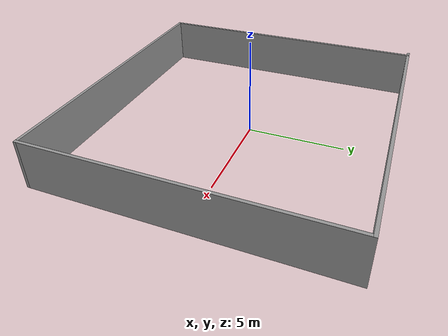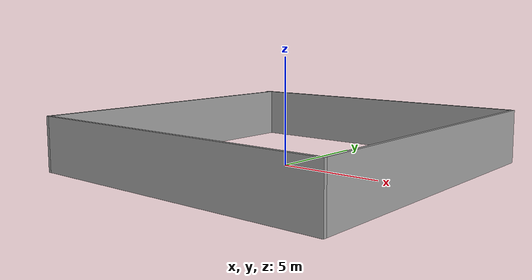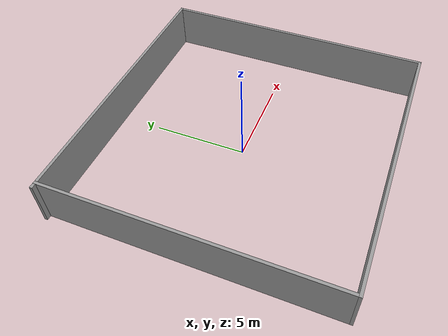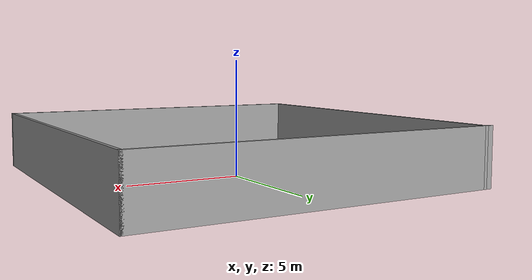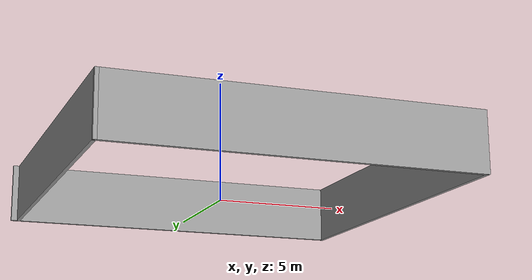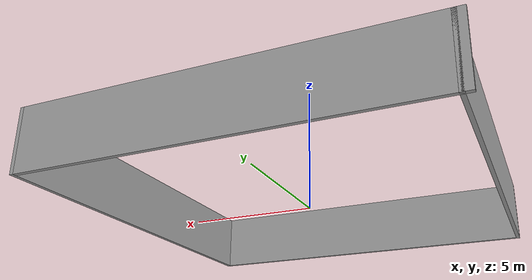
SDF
<?xml version='1.0'?>
<sdf version='1.7'>
  <model name='Walls'>
    <pose>0.255918 -0.233366 0 0 -0 0</pose>
    <link name='Wall_6'>
      <collision name='Wall_6_Collision'>
        <geometry>
          <box>
            <size>15.25 0.15 2.5</size>
          </box>
        </geometry>
        <pose>0 0 1.25 0 -0 0</pose>
      </collision>
      <visual name='Wall_6_Visual'>
        <pose>0 0 1.25 0 -0 0</pose>
        <geometry>
          <box>
            <size>15.25 0.15 2.5</size>
          </box>
        </geometry>
        <material>
          <script>
            <uri>file://media/materials/scripts/gazebo.material</uri>
            <name>Gazebo/Grey</name>
          </script>
          <ambient>1 1 1 1</ambient>
        </material>
        <meta>
          <layer>0</layer>
        </meta>
      </visual>
      <pose>-0 7.425 0 0 -0 0</pose>
    </link>
    <link name='Wall_7'>
      <collision name='Wall_7_Collision'>
        <geometry>
          <box>
            <size>15 0.15 2.5</size>
          </box>
        </geometry>
        <pose>0 0 1.25 0 -0 0</pose>
      </collision>
      <visual name='Wall_7_Visual'>
        <pose>0 0 1.25 0 -0 0</pose>
        <geometry>
          <box>
            <size>15 0.15 2.5</size>
          </box>
        </geometry>
        <material>
          <script>
            <uri>file://media/materials/scripts/gazebo.material</uri>
            <name>Gazebo/Grey</name>
          </script>
          <ambient>1 1 1 1</ambient>
        </material>
        <meta>
          <layer>0</layer>
        </meta>
      </visual>
      <pose>7.55 0 0 0 -0 -1.5708</pose>
    </link>
    <link name='Wall_8'>
      <collision name='Wall_8_Collision'>
        <geometry>
          <box>
            <size>15 0.15 2.5</size>
          </box>
        </geometry>
        <pose>0 0 1.25 0 -0 0</pose>
      </collision>
      <visual name='Wall_8_Visual'>
        <pose>0 0 1.25 0 -0 0</pose>
        <geometry>
          <box>
            <size>15 0.15 2.5</size>
          </box>
        </geometry>
        <material>
          <script>
            <uri>file://media/materials/scripts/gazebo.material</uri>
            <name>Gazebo/Grey</name>
          </script>
          <ambient>1 1 1 1</ambient>
        </material>
        <meta>
          <layer>0</layer>
        </meta>
      </visual>
      <pose>0.125 -7.425 0 0 -0 3.14159</pose>
    </link>
    <link name='Wall_9'>
      <collision name='Wall_9_Collision'>
        <geometry>
          <box>
            <size>15 0.15 2.5</size>
          </box>
        </geometry>
        <pose>0 0 1.25 0 -0 0</pose>
      </collision>
      <visual name='Wall_9_Visual'>
        <pose>0 0 1.25 0 -0 0</pose>
        <geometry>
          <box>
            <size>15 0.15 2.5</size>
          </box>
        </geometry>
        <material>
          <script>
            <uri>file://media/materials/scripts/gazebo.material</uri>
            <name>Gazebo/Grey</name>
          </script>
          <ambient>1 1 1 1</ambient>
        </material>
        <meta>
          <layer>0</layer>
        </meta>
      </visual>
      <pose>-7.3 0 0 0 -0 1.5708</pose>
    </link>
    <static>1</static>
  </model>
</sdf>
